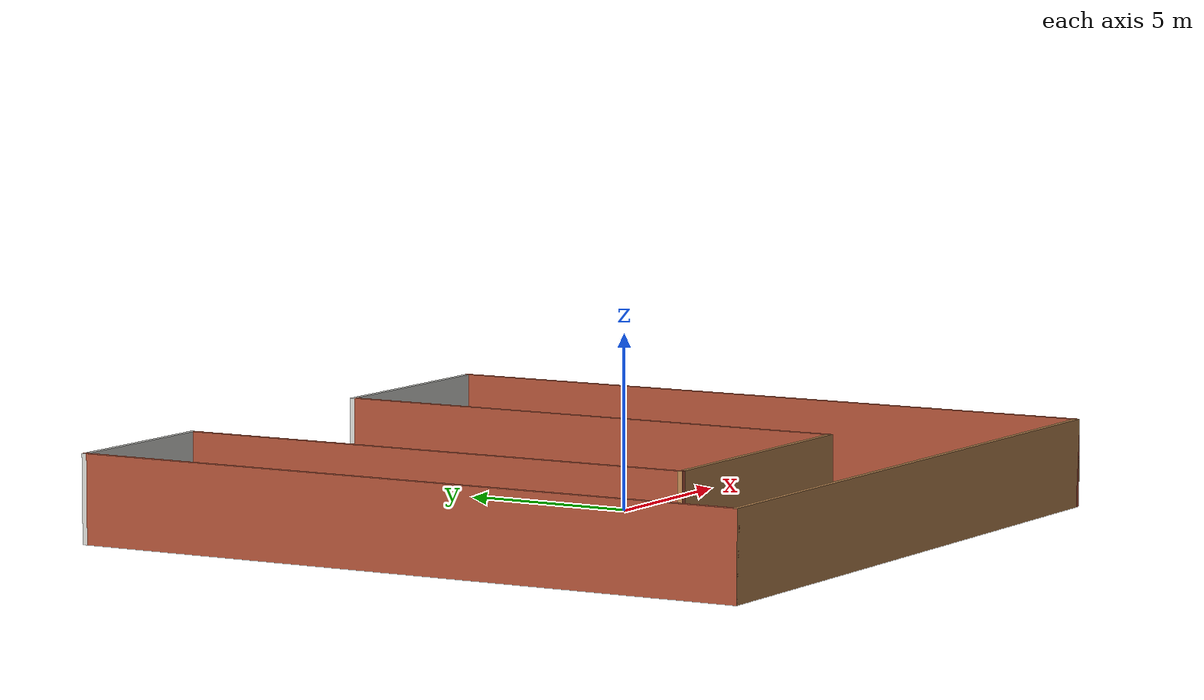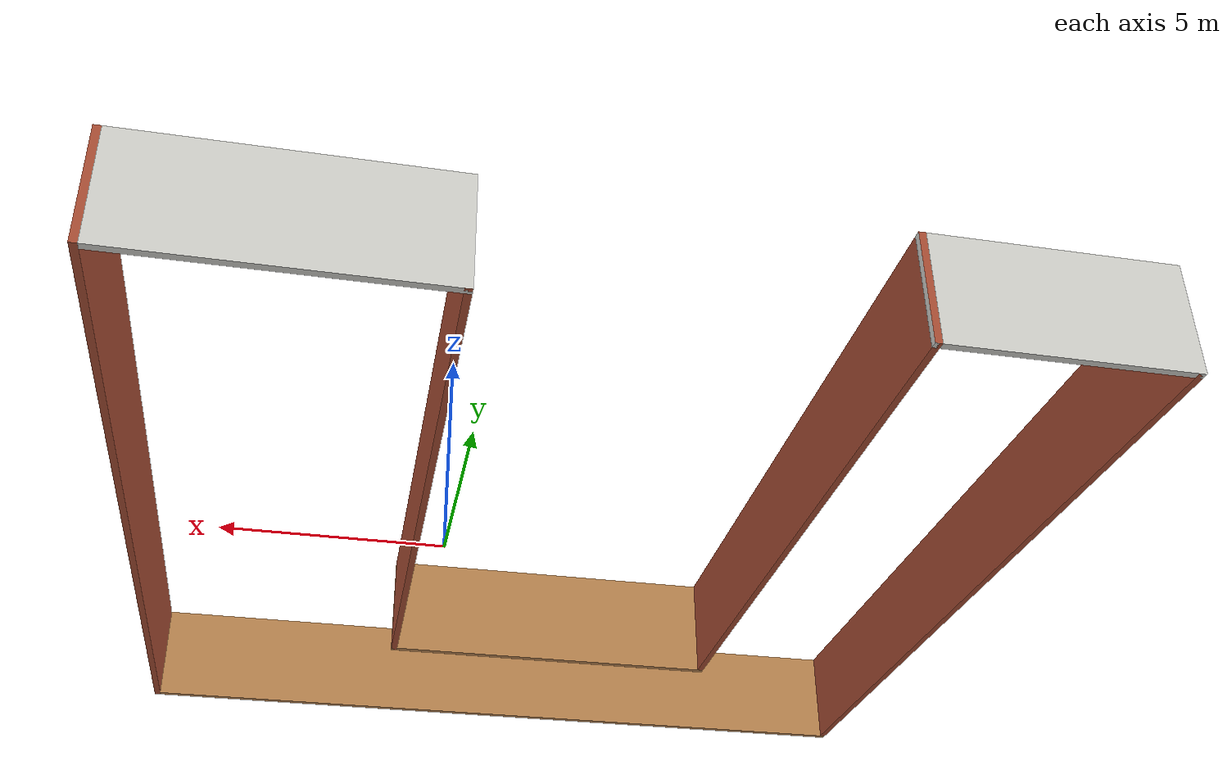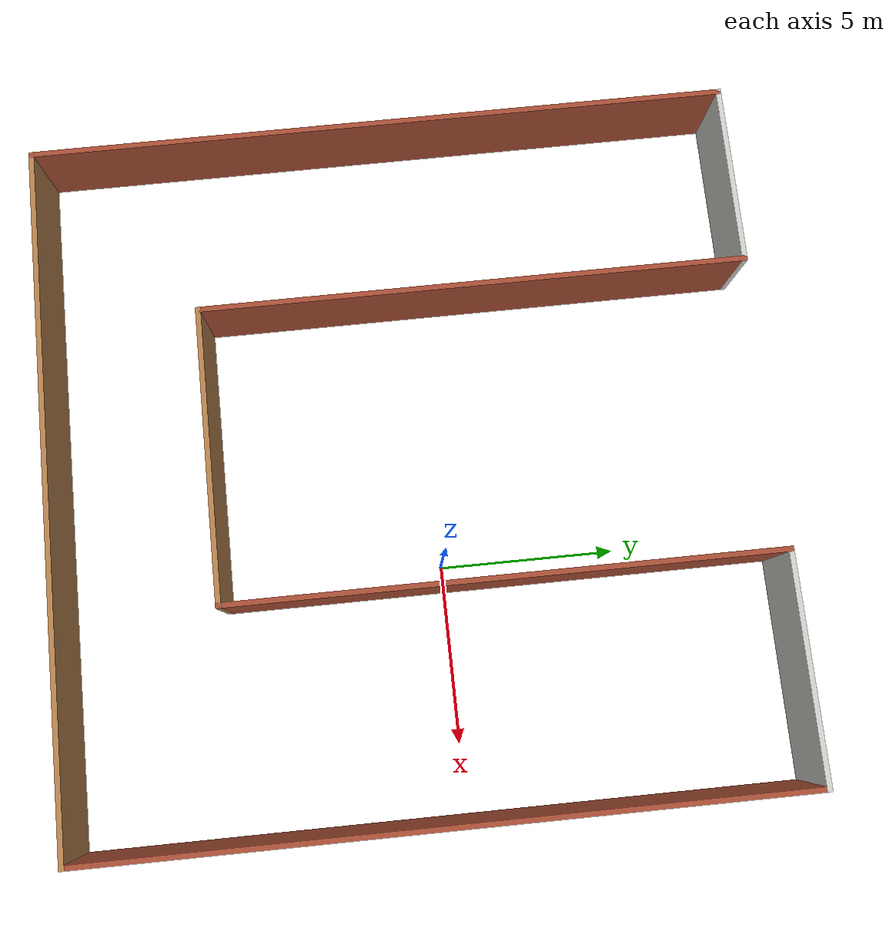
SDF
<?xml version='1.0'?>
<sdf version='1.7'>
  <model name='u-hallway'>
    <pose>-2.91641 -0.614393 0 0 -0 0</pose>
    <link name='Wall_30'>
      <collision name='Wall_30_Collision'>
        <geometry>
          <box>
            <size>20.25 0.15 2.5</size>
          </box>
        </geometry>
        <pose>0 0 1.25 0 -0 0</pose>
      </collision>
      <visual name='Wall_30_Visual'>
        <pose>0 0 1.25 0 -0 0</pose>
        <geometry>
          <box>
            <size>20.25 0.15 2.5</size>
          </box>
        </geometry>
        <material>
          <script>
            <uri>file://media/materials/scripts/gazebo.material</uri>
            <name>Gazebo/Bricks</name>
          </script>
          <ambient>1 1 1 1</ambient>
        </material>
        <meta>
          <layer>0</layer>
        </meta>
      </visual>
      <pose>-9.925 0 0 0 -0 -1.5708</pose>
    </link>
    <link name='Wall_31'>
      <collision name='Wall_31_Collision'>
        <geometry>
          <box>
            <size>20 0.15 2.5</size>
          </box>
        </geometry>
        <pose>0 0 1.25 0 -0 0</pose>
      </collision>
      <visual name='Wall_31_Visual'>
        <pose>0 0 1.25 0 -0 0</pose>
        <geometry>
          <box>
            <size>20 0.15 2.5</size>
          </box>
        </geometry>
        <material>
          <script>
            <uri>file://media/materials/scripts/gazebo.material</uri>
            <name>Gazebo/Wood</name>
          </script>
          <ambient>1 1 1 1</ambient>
        </material>
        <meta>
          <layer>0</layer>
        </meta>
      </visual>
      <pose>-0 -10.05 0 0 -0 0</pose>
    </link>
    <link name='Wall_32'>
      <collision name='Wall_32_Collision'>
        <geometry>
          <box>
            <size>20.25 0.15 2.5</size>
          </box>
        </geometry>
        <pose>0 0 1.25 0 -0 0</pose>
      </collision>
      <visual name='Wall_32_Visual'>
        <pose>0 0 1.25 0 -0 0</pose>
        <geometry>
          <box>
            <size>20.25 0.15 2.5</size>
          </box>
        </geometry>
        <material>
          <script>
            <uri>file://media/materials/scripts/gazebo.material</uri>
            <name>Gazebo/Bricks</name>
          </script>
          <ambient>1 1 1 1</ambient>
        </material>
        <meta>
          <layer>0</layer>
        </meta>
      </visual>
      <pose>9.925 0 0 0 -0 1.5708</pose>
    </link>
    <link name='Wall_33'>
      <collision name='Wall_33_Collision'>
        <geometry>
          <box>
            <size>6.5 0.15 2.5</size>
          </box>
        </geometry>
        <pose>0 0 1.25 0 -0 0</pose>
      </collision>
      <visual name='Wall_33_Visual'>
        <pose>0 0 1.25 0 -0 0</pose>
        <geometry>
          <box>
            <size>6.5 0.15 2.5</size>
          </box>
        </geometry>
        <material>
          <script>
            <uri>file://media/materials/scripts/gazebo.material</uri>
            <name>Gazebo/CeilingTiled</name>
          </script>
          <ambient>1 1 1 1</ambient>
        </material>
        <meta>
          <layer>0</layer>
        </meta>
      </visual>
      <pose>6.75 10.05 0 0 -0 3.14159</pose>
    </link>
    <link name='Wall_34'>
      <collision name='Wall_34_Collision'>
        <geometry>
          <box>
            <size>15.75 0.15 2.5</size>
          </box>
        </geometry>
        <pose>0 0 1.25 0 -0 0</pose>
      </collision>
      <visual name='Wall_34_Visual'>
        <pose>0 0 1.25 0 -0 0</pose>
        <geometry>
          <box>
            <size>15.75 0.15 2.5</size>
          </box>
        </geometry>
        <material>
          <script>
            <uri>file://media/materials/scripts/gazebo.material</uri>
            <name>Gazebo/Bricks</name>
          </script>
          <ambient>1 1 1 1</ambient>
        </material>
        <meta>
          <layer>0</layer>
        </meta>
      </visual>
      <pose>3.575 2.25 0 0 -0 -1.5708</pose>
    </link>
    <link name='Wall_35'>
      <collision name='Wall_35_Collision'>
        <geometry>
          <box>
            <size>8.5 0.15 2.5</size>
          </box>
        </geometry>
        <pose>0 0 1.25 0 -0 0</pose>
      </collision>
      <visual name='Wall_35_Visual'>
        <pose>0 0 1.25 0 -0 0</pose>
        <geometry>
          <box>
            <size>8.5 0.15 2.5</size>
          </box>
        </geometry>
        <material>
          <script>
            <uri>file://media/materials/scripts/gazebo.material</uri>
            <name>Gazebo/Wood</name>
          </script>
          <ambient>1 1 1 1</ambient>
        </material>
        <meta>
          <layer>0</layer>
        </meta>
      </visual>
      <pose>-0.6 -5.55 0 0 -0 3.14159</pose>
    </link>
    <link name='Wall_36'>
      <collision name='Wall_36_Collision'>
        <geometry>
          <box>
            <size>15.75 0.15 2.5</size>
          </box>
        </geometry>
        <pose>0 0 1.25 0 -0 0</pose>
      </collision>
      <visual name='Wall_36_Visual'>
        <pose>0 0 1.25 0 -0 0</pose>
        <geometry>
          <box>
            <size>15.75 0.15 2.5</size>
          </box>
        </geometry>
        <material>
          <script>
            <uri>file://media/materials/scripts/gazebo.material</uri>
            <name>Gazebo/Bricks</name>
          </script>
          <ambient>1 1 1 1</ambient>
        </material>
        <meta>
          <layer>0</layer>
        </meta>
      </visual>
      <pose>-4.775 2.25 0 0 -0 1.5708</pose>
    </link>
    <link name='Wall_37'>
      <collision name='Wall_37_Collision'>
        <geometry>
          <box>
            <size>5.3 0.15 2.5</size>
          </box>
        </geometry>
        <pose>0 0 1.25 0 -0 0</pose>
      </collision>
      <visual name='Wall_37_Visual'>
        <pose>0 0 1.25 0 -0 0</pose>
        <geometry>
          <box>
            <size>5.3 0.15 2.5</size>
          </box>
        </geometry>
        <material>
          <script>
            <uri>file://media/materials/scripts/gazebo.material</uri>
            <name>Gazebo/CeilingTiled</name>
          </script>
          <ambient>1 1 1 1</ambient>
        </material>
        <meta>
          <layer>0</layer>
        </meta>
      </visual>
      <pose>-7.35 10.05 0 0 -0 3.14159</pose>
    </link>
    <static>1</static>
  </model>
</sdf>
